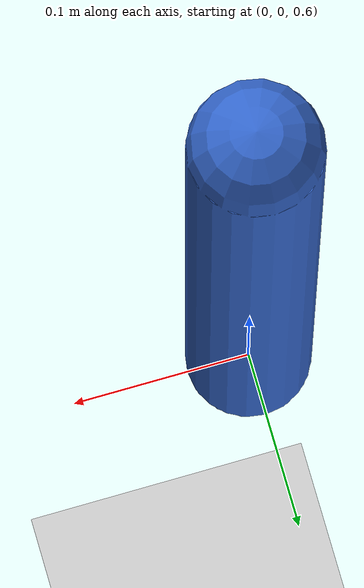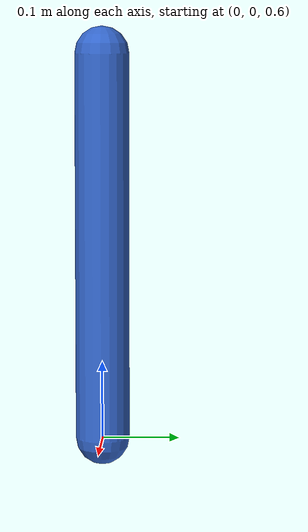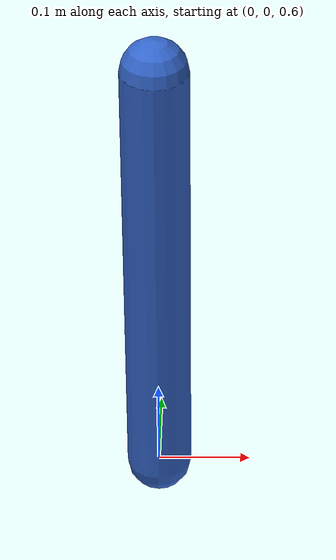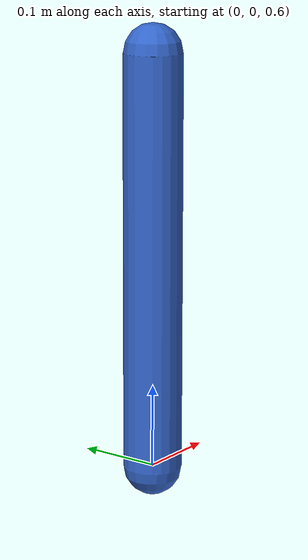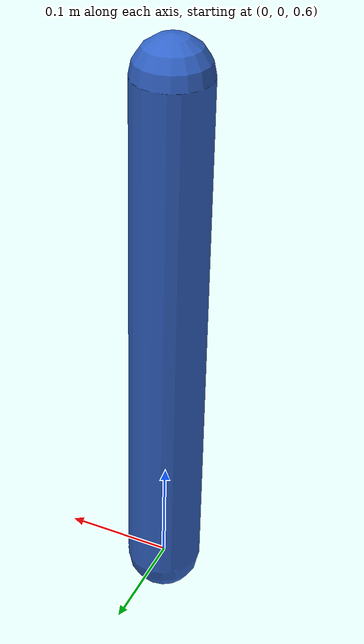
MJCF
<mujoco model="hinge_arm">
    <compiler angle="radian" autolimits="true"/>
    <option timestep="0.002" gravity="0 0 -9.81"/>

    <default>
        <joint damping="0.08" armature="0.01"/>
        <geom rgba="0.2 0.4 0.8 1"/>
    </default>

    <worldbody>
        <light name="top_light" pos="0 0 3" dir="0 0 -1"/>
        <geom name="ground" type="plane" size="2 2 0.05" rgba="0.8 0.8 0.8 1"/>
        <body name="arm" pos="0 0 0.6">
            <joint name="hinge" type="hinge" axis="0 1 0" limited="true" range="-1.57 1.57"/>
            <geom name="arm_capsule" type="capsule" fromto="0 0 0 0 0 0.5" size="0.035" mass="0.4"/>
            <site name="tip" pos="0 0 0.5" size="0.025" rgba="1 0.2 0.2 1"/>
        </body>
    </worldbody>

    <actuator>
        <motor name="hinge_motor" joint="hinge" ctrlrange="-3 3" gear="1"/>
    </actuator>

    <sensor>
        <jointpos name="hinge_position" joint="hinge"/>
        <jointvel name="hinge_velocity" joint="hinge"/>
        <actuatorfrc name="motor_force" actuator="hinge_motor"/>
        <framepos name="tip_position" objtype="site" objname="tip"/>
    </sensor>
</mujoco>
